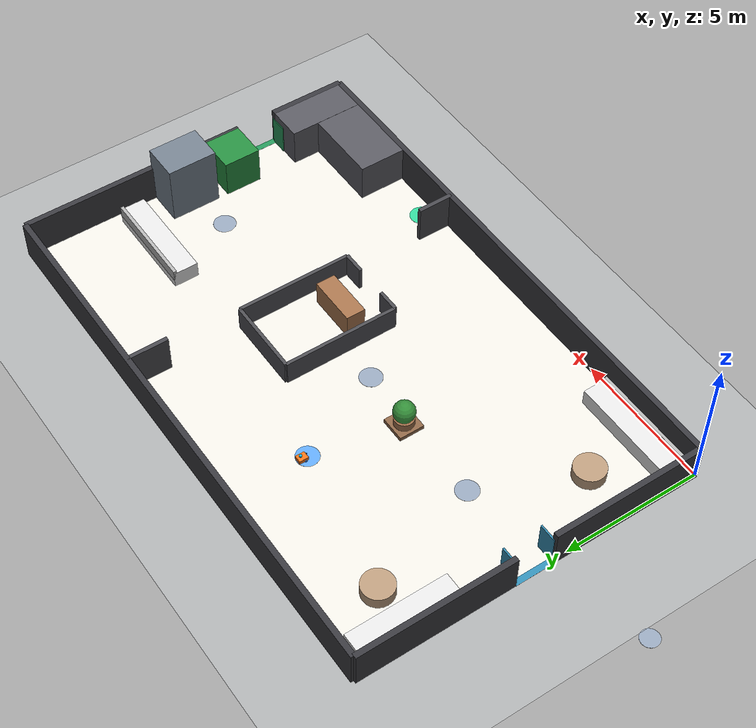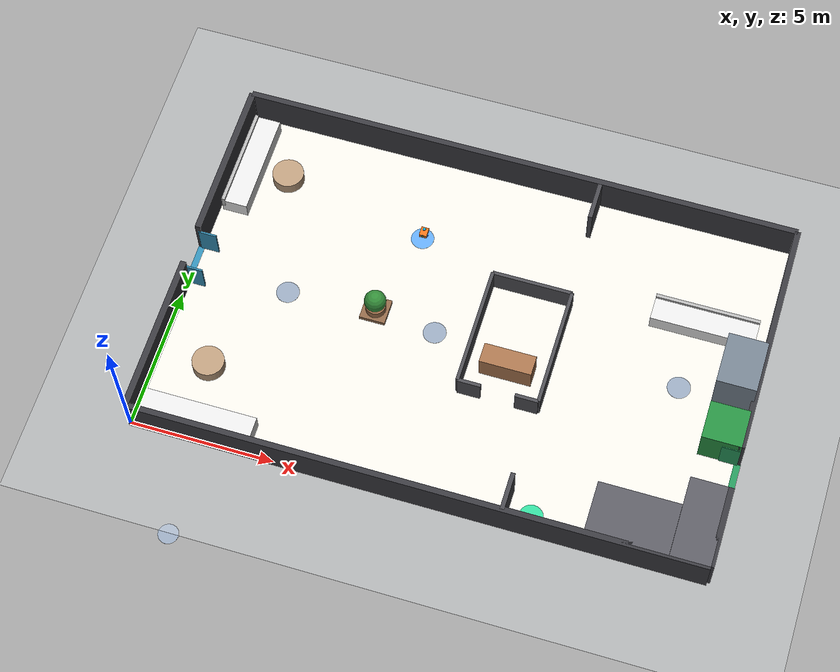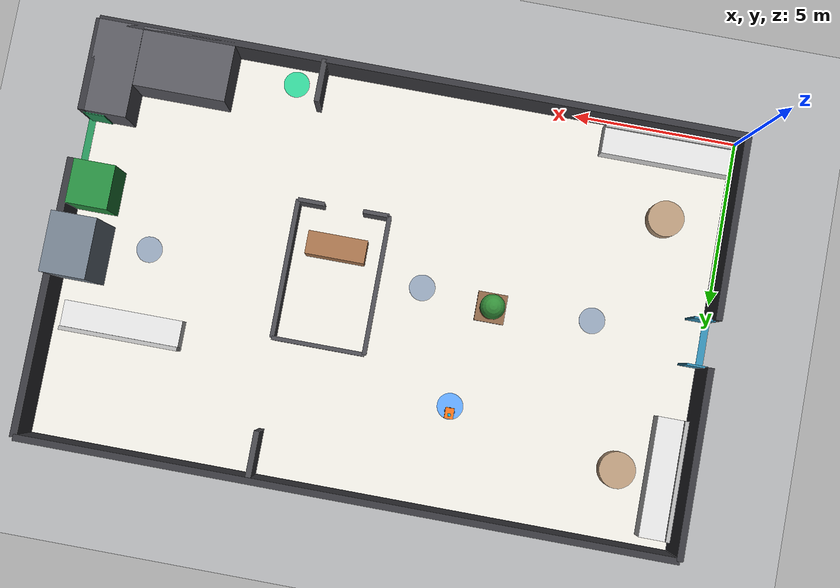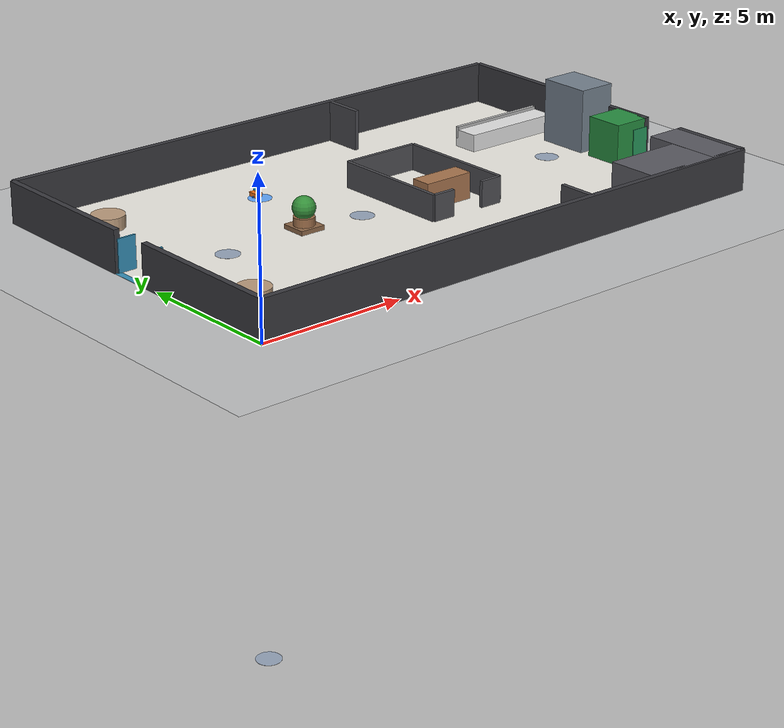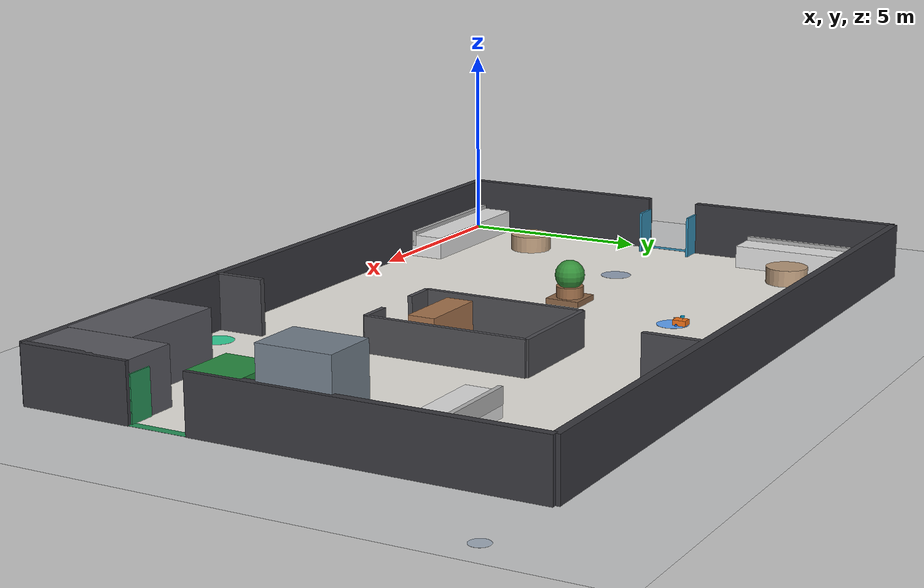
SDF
<?xml version="1.0" ?>
<sdf version="1.8">
  <world name="hotel_lobby_world">
    <!-- Scene Configuration: An toan bo luoi o vuong tren mat san -->
    <scene>
      <ambient>0.60 0.60 0.60 1.0</ambient>
      <background>0.88 0.90 0.92 1.0</background>
      <grid>false</grid>
      <origin_visual>false</origin_visual>
    </scene>

    <!-- Physics Configuration -->
    <physics name="1ms" type="ignored">
      <max_step_size>0.001</max_step_size>
      <real_time_factor>1.0</real_time_factor>
    </physics>

    <!-- Essential System Plugins -->
    <plugin filename="gz-sim-physics-system" name="gz::sim::systems::Physics"/>
    <plugin filename="gz-sim-user-commands-system" name="gz::sim::systems::UserCommands"/>
    <plugin filename="gz-sim-scene-broadcaster-system" name="gz::sim::systems::SceneBroadcaster"/>
    <plugin filename="gz-sim-sensors-system" name="gz::sim::systems::Sensors">
      <render_engine>ogre2</render_engine>
    </plugin>

    <!-- Native Gazebo GUI with docked 3D LiDAR Visualizer -->
    <gui fullscreen="0">
      <plugin filename="MinimalScene" name="3D View">
        <gz-gui>
          <title>3D View</title>
          <property type="bool" key="showTitleBar">false</property>
          <property type="string" key="state">docked</property>
          <property type="bool" key="show_grid">false</property>
        </gz-gui>
        <show_grid>false</show_grid>
        <engine>ogre2</engine>
        <scene>scene</scene>
        <ambient_light>0.60 0.60 0.60</ambient_light>
        <background_color>0.88 0.90 0.92</background_color>
        <!-- Isometric view from south entrance overlooking entire 19.60m x 12.60m grand lobby -->
        <camera_pose>9.80 -7.5 16.5 0 0.85 1.5708</camera_pose>
      </plugin>

      <plugin filename="EntityContextMenuPlugin" name="Entity context menu">
        <gz-gui>
          <property key="state" type="string">floating</property>
          <property key="width" type="double">5</property>
          <property key="height" type="double">5</property>
          <property key="showTitleBar" type="bool">false</property>
        </gz-gui>
      </plugin>

      <plugin filename="GzSceneManager" name="Scene Manager">
        <gz-gui>
          <property key="resizable" type="bool">false</property>
          <property key="width" type="double">5</property>
          <property key="height" type="double">5</property>
          <property key="state" type="string">floating</property>
          <property key="showTitleBar" type="bool">false</property>
        </gz-gui>
      </plugin>

      <plugin filename="InteractiveViewControl" name="Interactive view control">
        <gz-gui>
          <property key="resizable" type="bool">false</property>
          <property key="width" type="double">5</property>
          <property key="height" type="double">5</property>
          <property key="state" type="string">floating</property>
          <property key="showTitleBar" type="bool">false</property>
        </gz-gui>
      </plugin>

      <plugin filename="CameraTracking" name="Camera Tracking">
        <gz-gui>
          <property key="resizable" type="bool">false</property>
          <property key="width" type="double">5</property>
          <property key="height" type="double">5</property>
          <property key="state" type="string">floating</property>
          <property key="showTitleBar" type="bool">false</property>
        </gz-gui>
      </plugin>

      <plugin filename="WorldControl" name="World control">
        <gz-gui>
          <title>World control</title>
          <property type="bool" key="showTitleBar">false</property>
          <property type="bool" key="resizable">false</property>
          <property key="height" type="double">72</property>
          <property key="z" type="double">1</property>
          <property key="state" type="string">floating</property>
          <anchors target="3D View">
            <line own="left" target="left"/>
            <line own="bottom" target="bottom"/>
          </anchors>
        </gz-gui>
        <play_pause>true</play_pause>
        <step>true</step>
        <start_paused>false</start_paused>
        <use_event>true</use_event>
      </plugin>

      <plugin filename="WorldStats" name="World stats">
        <gz-gui>
          <title>World stats</title>
          <property type="bool" key="showTitleBar">false</property>
          <property type="bool" key="resizable">false</property>
          <property key="height" type="double">110</property>
          <property key="width" type="double">290</property>
          <property key="z" type="double">1</property>
          <property key="state" type="string">floating</property>
          <anchors target="3D View">
            <line own="right" target="right"/>
            <line own="bottom" target="bottom"/>
          </anchors>
        </gz-gui>
        <sim_time>true</sim_time>
        <real_time>true</real_time>
        <real_time_factor>true</real_time_factor>
        <iterations>true</iterations>
      </plugin>

      <!-- LiDAR 360 Rays Visualizer in Gazebo -->
      <plugin filename="VisualizeLidar" name="Visualize Lidar">
        <gz-gui>
          <property type="string" key="state">docked</property>
        </gz-gui>
      </plugin>

      <plugin filename="ComponentInspector" name="Component inspector">
        <gz-gui>
          <property type="string" key="state">docked</property>
        </gz-gui>
      </plugin>

      <plugin filename="EntityTree" name="Entity tree">
        <gz-gui>
          <property type="string" key="state">docked</property>
        </gz-gui>
      </plugin>

      <!-- Lai xe ao ngay trong Gazebo: publish gz.msgs.Twist len /cmd_vel (DiffDrive cua hc_robot) -->
      <plugin filename="Teleop" name="Teleop">
        <gz-gui>
          <title>Teleop</title>
          <property type="string" key="state">docked</property>
        </gz-gui>
        <topic>/cmd_vel</topic>
      </plugin>
    </gui>

    <!-- Lighting -->
    <light name="sun" type="directional">
      <cast_shadows>true</cast_shadows>
      <pose>9.80 6.30 25 0 0 0</pose>
      <diffuse>0.95 0.95 0.95 1</diffuse>
      <specular>0.3 0.3 0.3 1</specular>
      <direction>-0.3 0.2 -0.9</direction>
    </light>

    <!-- Ground Plane -->
    <model name="ground_plane">
      <static>true</static>
      <link name="link">
        <collision name="collision">
          <geometry>
            <plane>
              <normal>0 0 1</normal>
              <size>80 80</size>
            </plane>
          </geometry>
        </collision>
        <visual name="visual">
          <geometry>
            <plane>
              <normal>0 0 1</normal>
              <size>80 80</size>
            </plane>
          </geometry>
          <material>
            <ambient>0.82 0.84 0.86 1</ambient>
            <diffuse>0.82 0.84 0.86 1</diffuse>
          </material>
        </visual>
      </link>
    </model>

    <!-- HOTEL LOBBY ARCHITECTURE (19.60m x 12.60m - GROUND FLOOR)-->
    <!-- DONG BO 100% VOI SO DO MAT BANG 490x315 (TI LE 4.0x)     -->
    <model name="hotel_lobby_architecture">
      <static>true</static>

      <!-- 1. SAN SANH KHACH SAN (Tiled Lobby Floor: 19.60m x 12.60m) -->
      <link name="lobby_floor">
        <pose>9.80 6.30 0.005 0 0 0</pose>
        <visual name="vis">
          <geometry><box><size>19.60 12.60 0.01</size></box></geometry>
          <material>
            <ambient>0.92 0.91 0.88 1</ambient>
            <diffuse>0.92 0.91 0.88 1</diffuse>
            <specular>0.3 0.3 0.3 1</specular>
          </material>
        </visual>
      </link>

      <!-- 2. TUONG BAO NGOAI (OUTER WALLS: Cao 1.4m, Day 0.20m) -->
      <!-- Front entrance on the west wall: y = 5.55 to 6.95 m. -->
      <link name="wall_west_south">
        <pose>0.00 2.775 0.7 0 0 0</pose>
        <collision name="col"><geometry><box><size>0.20 5.55 1.4</size></box></geometry></collision>
        <visual name="vis">
          <geometry><box><size>0.20 5.55 1.4</size></box></geometry>
          <material><ambient>0.22 0.22 0.24 1</ambient><diffuse>0.22 0.22 0.24 1</diffuse></material>
        </visual>
      </link>
      <link name="wall_west_north">
        <pose>0.00 9.775 0.7 0 0 0</pose>
        <collision name="col"><geometry><box><size>0.20 5.65 1.4</size></box></geometry></collision>
        <visual name="vis">
          <geometry><box><size>0.20 5.65 1.4</size></box></geometry>
          <material><ambient>0.22 0.22 0.24 1</ambient><diffuse>0.22 0.22 0.24 1</diffuse></material>
        </visual>
      </link>
      <link name="front_door">
        <pose>0.00 6.25 0 0 0 0</pose>
        <collision name="south_leaf_collision">
          <pose>0.32 -0.70 0.55 0 0 0</pose>
          <geometry><box><size>0.64 0.06 1.10</size></box></geometry>
        </collision>
        <visual name="south_leaf">
          <pose>0.32 -0.70 0.55 0 0 0</pose>
          <geometry><box><size>0.64 0.06 1.10</size></box></geometry>
          <material><ambient>0.20 0.55 0.70 1</ambient><diffuse>0.20 0.55 0.70 1</diffuse></material>
        </visual>
        <collision name="north_leaf_collision">
          <pose>0.32 0.70 0.55 0 0 0</pose>
          <geometry><box><size>0.64 0.06 1.10</size></box></geometry>
        </collision>
        <visual name="north_leaf">
          <pose>0.32 0.70 0.55 0 0 0</pose>
          <geometry><box><size>0.64 0.06 1.10</size></box></geometry>
          <material><ambient>0.20 0.55 0.70 1</ambient><diffuse>0.20 0.55 0.70 1</diffuse></material>
        </visual>
        <visual name="threshold">
          <pose>0 0 0.014 0 0 0</pose>
          <geometry><box><size>0.22 1.40 0.004</size></box></geometry>
          <material><ambient>0.20 0.55 0.70 1</ambient><diffuse>0.20 0.55 0.70 1</diffuse></material>
        </visual>
      </link>

      <!-- Rear exit between the lift and WC: y = 2.80 to 4.26 m. -->
      <link name="wall_east_south">
        <pose>19.60 1.40 0.7 0 0 0</pose>
        <collision name="col"><geometry><box><size>0.20 2.80 1.4</size></box></geometry></collision>
        <visual name="vis">
          <geometry><box><size>0.20 2.80 1.4</size></box></geometry>
          <material><ambient>0.22 0.22 0.24 1</ambient><diffuse>0.22 0.22 0.24 1</diffuse></material>
        </visual>
      </link>
      <link name="wall_east_north">
        <pose>19.60 8.43 0.7 0 0 0</pose>
        <collision name="col"><geometry><box><size>0.20 8.34 1.4</size></box></geometry></collision>
        <visual name="vis">
          <geometry><box><size>0.20 8.34 1.4</size></box></geometry>
          <material><ambient>0.22 0.22 0.24 1</ambient><diffuse>0.22 0.22 0.24 1</diffuse></material>
        </visual>
      </link>
      <link name="rear_door">
        <pose>19.60 3.53 0 0 0 0</pose>
        <collision name="south_leaf_collision">
          <pose>-0.32 -0.73 0.55 0 0 0</pose>
          <geometry><box><size>0.64 0.06 1.10</size></box></geometry>
        </collision>
        <visual name="south_leaf">
          <pose>-0.32 -0.73 0.55 0 0 0</pose>
          <geometry><box><size>0.64 0.06 1.10</size></box></geometry>
          <material><ambient>0.15 0.58 0.35 1</ambient><diffuse>0.15 0.58 0.35 1</diffuse></material>
        </visual>
        <collision name="north_leaf_collision">
          <pose>-0.32 0.73 0.55 0 0 0</pose>
          <geometry><box><size>0.64 0.06 1.10</size></box></geometry>
        </collision>
        <visual name="north_leaf">
          <pose>-0.32 0.73 0.55 0 0 0</pose>
          <geometry><box><size>0.64 0.06 1.10</size></box></geometry>
          <material><ambient>0.15 0.58 0.35 1</ambient><diffuse>0.15 0.58 0.35 1</diffuse></material>
        </visual>
        <visual name="threshold">
          <pose>0 0 0.014 0 0 0</pose>
          <geometry><box><size>0.22 1.46 0.004</size></box></geometry>
          <material><ambient>0.15 0.58 0.35 1</ambient><diffuse>0.15 0.58 0.35 1</diffuse></material>
        </visual>
      </link>

      <!-- Tuong Bac (North Wall: y = 12.60) -->
      <link name="wall_north">
        <pose>9.80 12.60 0.7 0 0 0</pose>
        <collision name="col"><geometry><box><size>19.60 0.20 1.4</size></box></geometry></collision>
        <visual name="vis">
          <geometry><box><size>19.60 0.20 1.4</size></box></geometry>
          <material><ambient>0.22 0.22 0.24 1</ambient><diffuse>0.22 0.22 0.24 1</diffuse></material>
        </visual>
      </link>

      <!-- Tuong Nam (South Wall: y = 0.0) -->
      <link name="wall_south">
        <pose>9.80 0.0 0.7 0 0 0</pose>
        <collision name="col"><geometry><box><size>19.60 0.20 1.4</size></box></geometry></collision>
        <visual name="vis">
          <geometry><box><size>19.60 0.20 1.4</size></box></geometry>
          <material><ambient>0.22 0.22 0.24 1</ambient><diffuse>0.22 0.22 0.24 1</diffuse></material>
        </visual>
      </link>

      <!-- 3. VACH NGAN DOC (PARTITION WALLS: x = 12.68m) -->
      <!-- Vach Ngan Bac -->
      <link name="partition_top">
        <pose>12.68 11.87 0.7 0 0 0</pose>
        <collision name="col"><geometry><box><size>0.15 1.46 1.4</size></box></geometry></collision>
        <visual name="vis">
          <geometry><box><size>0.15 1.46 1.4</size></box></geometry>
          <material><ambient>0.28 0.28 0.30 1</ambient><diffuse>0.28 0.28 0.30 1</diffuse></material>
        </visual>
      </link>

      <!-- Vach Ngan Nam -->
      <link name="partition_bottom">
        <pose>12.78 0.65 0.7 0 0 0</pose>
        <collision name="col"><geometry><box><size>0.15 1.30 1.4</size></box></geometry></collision>
        <visual name="vis">
          <geometry><box><size>0.15 1.30 1.4</size></box></geometry>
          <material><ambient>0.28 0.28 0.30 1</ambient><diffuse>0.28 0.28 0.30 1</diffuse></material>
        </visual>
      </link>

      <!-- 4. KHU QUAY LE TAN TRUNG TAM (RECEPTION COUNTER: x=10.04..12.82, y=4.20..8.40) -->
      <link name="reception_wall_north">
        <pose>11.43 8.40 0.45 0 0 0</pose>
        <collision name="col"><geometry><box><size>2.78 0.12 0.90</size></box></geometry></collision>
        <visual name="vis">
          <geometry><box><size>2.78 0.12 0.90</size></box></geometry>
          <material><ambient>0.30 0.30 0.32 1</ambient><diffuse>0.30 0.30 0.32 1</diffuse></material>
        </visual>
      </link>
      <link name="reception_wall_west">
        <pose>10.04 6.30 0.45 0 0 0</pose>
        <collision name="col"><geometry><box><size>0.12 4.20 0.90</size></box></geometry></collision>
        <visual name="vis">
          <geometry><box><size>0.12 4.20 0.90</size></box></geometry>
          <material><ambient>0.30 0.30 0.32 1</ambient><diffuse>0.30 0.30 0.32 1</diffuse></material>
        </visual>
      </link>
      <link name="reception_wall_east">
        <pose>12.82 6.30 0.45 0 0 0</pose>
        <collision name="col"><geometry><box><size>0.12 4.20 0.90</size></box></geometry></collision>
        <visual name="vis">
          <geometry><box><size>0.12 4.20 0.90</size></box></geometry>
          <material><ambient>0.30 0.30 0.32 1</ambient><diffuse>0.30 0.30 0.32 1</diffuse></material>
        </visual>
      </link>
      <link name="reception_wall_south_l">
        <pose>10.44 4.20 0.45 0 0 0</pose>
        <collision name="col"><geometry><box><size>0.80 0.12 0.90</size></box></geometry></collision>
        <visual name="vis">
          <geometry><box><size>0.80 0.12 0.90</size></box></geometry>
          <material><ambient>0.30 0.30 0.32 1</ambient><diffuse>0.30 0.30 0.32 1</diffuse></material>
        </visual>
      </link>
      <link name="reception_wall_south_r">
        <pose>12.42 4.20 0.45 0 0 0</pose>
        <collision name="col"><geometry><box><size>0.80 0.12 0.90</size></box></geometry></collision>
        <visual name="vis">
          <geometry><box><size>0.80 0.12 0.90</size></box></geometry>
          <material><ambient>0.30 0.30 0.32 1</ambient><diffuse>0.30 0.30 0.32 1</diffuse></material>
        </visual>
      </link>
      <link name="reception_desk">
        <pose>11.43 5.40 0.45 0 0 0</pose>
        <collision name="col"><geometry><box><size>1.80 0.70 0.90</size></box></geometry></collision>
        <visual name="vis">
          <geometry><box><size>1.80 0.70 0.90</size></box></geometry>
          <material><ambient>0.65 0.45 0.30 1</ambient><diffuse>0.65 0.45 0.30 1</diffuse></material>
        </visual>
      </link>

      <!-- 5. GIAN TRAI - TAY BAC: 1 SOFA DOC DUNG SAT TUONG TAY + BAN TRA -->
      <!-- Sofa A: Doc (Dung) - Tay tren, sat tuong Tay -->
      <link name="sofa_tl_vertical">
        <pose>0.65 10.40 0.30 0 0 0</pose>
        <collision name="col"><geometry><box><size>0.90 3.60 0.60</size></box></geometry></collision>
        <visual name="vis">
          <geometry><box><size>0.90 3.60 0.60</size></box></geometry>
          <material><ambient>0.88 0.88 0.88 1</ambient><diffuse>0.88 0.88 0.88 1</diffuse></material>
        </visual>
      </link>
      <!-- Sofa A dem tua lung (cushion back) -->
      <link name="sofa_tl_vertical_back">
        <pose>0.25 10.40 0.50 0 0 0</pose>
        <visual name="vis">
          <geometry><box><size>0.12 3.60 0.40</size></box></geometry>
          <material><ambient>0.70 0.70 0.70 1</ambient><diffuse>0.70 0.70 0.70 1</diffuse></material>
        </visual>
      </link>

      <!-- Ban tra tron khu Tay Bac -->
      <link name="table_top_left">
        <pose>2.00 10.40 0.22 0 0 0</pose>
        <collision name="col"><geometry><cylinder><radius>0.55</radius><length>0.44</length></cylinder></geometry></collision>
        <visual name="vis">
          <geometry><cylinder><radius>0.55</radius><length>0.44</length></cylinder></geometry>
          <material><ambient>0.72 0.60 0.48 1</ambient><diffuse>0.72 0.60 0.48 1</diffuse></material>
        </visual>
      </link>

      <!-- 6. GIAN TRAI - TAY NAM: SOFA NGANG DAI SAT TUONG NAM + BAN TRA -->
      <!-- Sofa ngang dai sat tuong Nam -->
      <link name="sofa_bot_left">
        <pose>2.10 0.65 0.30 0 0 0</pose>
        <collision name="col"><geometry><box><size>4.00 0.90 0.60</size></box></geometry></collision>
        <visual name="vis">
          <geometry><box><size>4.00 0.90 0.60</size></box></geometry>
          <material><ambient>0.88 0.88 0.88 1</ambient><diffuse>0.88 0.88 0.88 1</diffuse></material>
        </visual>
      </link>
      <link name="sofa_bot_left_back">
        <pose>2.10 0.25 0.50 0 0 0</pose>
        <visual name="vis">
          <geometry><box><size>4.00 0.12 0.40</size></box></geometry>
          <material><ambient>0.70 0.70 0.70 1</ambient><diffuse>0.70 0.70 0.70 1</diffuse></material>
        </visual>
      </link>

      <!-- Ban tra tron khu Tay Nam -->
      <link name="table_bot_left">
        <pose>1.80 2.70 0.22 0 0 0</pose>
        <collision name="col"><geometry><cylinder><radius>0.55</radius><length>0.44</length></cylinder></geometry></collision>
        <visual name="vis">
          <geometry><cylinder><radius>0.55</radius><length>0.44</length></cylinder></geometry>
          <material><ambient>0.72 0.60 0.48 1</ambient><diffuse>0.72 0.60 0.48 1</diffuse></material>
        </visual>
      </link>

      <!-- 7. CHAU CAY CANH (POTTED PLANT) TRUNG TAM GIAN TRAI -->
      <!-- De chau (day) -->
      <link name="plant_base">
        <pose>6.52 6.30 0.08 0 0 0</pose>
        <collision name="col"><geometry><box><size>0.90 0.90 0.16</size></box></geometry></collision>
        <visual name="vis">
          <geometry><box><size>0.90 0.90 0.16</size></box></geometry>
          <material><ambient>0.55 0.40 0.28 1</ambient><diffuse>0.55 0.40 0.28 1</diffuse></material>
        </visual>
      </link>
      <!-- Than chau (gom) -->
      <link name="plant_pot">
        <pose>6.52 6.30 0.30 0 0 0</pose>
        <collision name="col"><geometry><cylinder><radius>0.35</radius><length>0.28</length></cylinder></geometry></collision>
        <visual name="vis">
          <geometry><cylinder><radius>0.35</radius><length>0.28</length></cylinder></geometry>
          <material><ambient>0.60 0.42 0.28 1</ambient><diffuse>0.60 0.42 0.28 1</diffuse></material>
        </visual>
      </link>
      <!-- Tan la cay (sphere xanh la) -->
      <link name="plant_foliage">
        <pose>6.52 6.30 0.72 0 0 0</pose>
        <visual name="vis">
          <geometry><sphere><radius>0.38</radius></sphere></geometry>
          <material><ambient>0.20 0.55 0.22 1</ambient><diffuse>0.20 0.55 0.22 1</diffuse></material>
        </visual>
      </link>

      <!-- 8. GIAN PHAI: 1 SOFA NGANG (QUAY VE HUONG NAM) -->
      <link name="sofa_right_horizontal">
        <pose>17.35 8.85 0.30 0 0 0</pose>
        <collision name="col"><geometry><box><size>3.60 0.90 0.60</size></box></geometry></collision>
        <visual name="vis">
          <geometry><box><size>3.60 0.90 0.60</size></box></geometry>
          <material><ambient>0.88 0.88 0.88 1</ambient><diffuse>0.88 0.88 0.88 1</diffuse></material>
        </visual>
      </link>
      <link name="sofa_right_horizontal_back">
        <pose>17.35 9.25 0.50 0 0 0</pose>
        <visual name="vis">
          <geometry><box><size>3.60 0.12 0.40</size></box></geometry>
          <material><ambient>0.70 0.70 0.70 1</ambient><diffuse>0.70 0.70 0.70 1</diffuse></material>
        </visual>
      </link>

      <!-- 9. CUM THANG MAY (ELEVATOR) -->
      <link name="elevator_cabin">
        <pose>18.92 6.86 1.10 0 0 0</pose>
        <collision name="col"><geometry><box><size>1.35 1.80 2.20</size></box></geometry></collision>
        <visual name="vis">
          <geometry><box><size>1.35 1.80 2.20</size></box></geometry>
          <material><ambient>0.45 0.50 0.55 1</ambient><diffuse>0.45 0.50 0.55 1</diffuse><specular>0.7 0.7 0.7 1</specular></material>
        </visual>
      </link>

      <!-- 10. CUA THOAT HIEM KHAN CAP (EMERGENCY EXIT) -->
      <link name="emergency_exit_block">
        <pose>18.92 4.93 0.70 0 0 0</pose>
        <collision name="col"><geometry><box><size>1.35 1.34 1.40</size></box></geometry></collision>
        <visual name="vis">
          <geometry><box><size>1.35 1.34 1.40</size></box></geometry>
          <material><ambient>0.15 0.55 0.25 1</ambient><diffuse>0.15 0.55 0.25 1</diffuse></material>
        </visual>
      </link>

      <!-- 11. CUM NHA VE SINH (RESTROOMS WC 1 & WC 2 - GOC DONG NAM) -->
      <link name="wc_east">
        <pose>18.92 1.40 0.70 0 0 0</pose>
        <collision name="col"><geometry><box><size>1.35 2.80 1.40</size></box></geometry></collision>
        <visual name="vis">
          <geometry><box><size>1.35 2.80 1.40</size></box></geometry>
          <material><ambient>0.35 0.35 0.38 1</ambient><diffuse>0.35 0.35 0.38 1</diffuse></material>
        </visual>
      </link>
      <link name="wc_south">
        <pose>16.85 0.90 0.70 0 0 0</pose>
        <collision name="col"><geometry><box><size>2.78 1.80 1.40</size></box></geometry></collision>
        <visual name="vis">
          <geometry><box><size>2.78 1.80 1.40</size></box></geometry>
          <material><ambient>0.35 0.35 0.38 1</ambient><diffuse>0.35 0.35 0.38 1</diffuse></material>
        </visual>
      </link>
      <!-- 12. CAC VUNG KIEM SOAT CHUC NANG (ZONES VISUAL OVERLAYS)  -->
      <!-- Hien thi truc quan tren san Gazebo dong bo voi Web Admin  -->
      <!-- Vung Cam Dung (NO_STOP Doorway: x=12.84, y=9.80, w=2.4, h=2.8) -->
      <link name="vis_zone_nostop_doorway">
        <pose>12.84 9.80 0.007 0 0 0</pose>
        <visual name="vis">
          <geometry><box><size>2.40 2.80 0.004</size></box></geometry>
          <material>
            <ambient>0.95 0.15 0.25 0.40</ambient>
            <diffuse>0.95 0.15 0.25 0.40</diffuse>
            <emissive>0.3 0.05 0.08 0.40</emissive>
          </material>
        </visual>
      </link>

      <!-- Vung Giam Toc Quay Le Tan (SPEED_ZONE: x=11.44, y=2.80, w=4.8, h=2.4) -->
      <link name="vis_zone_speed_frontdesk">
        <pose>11.44 2.80 0.007 0 0 0</pose>
        <visual name="vis">
          <geometry><box><size>4.80 2.40 0.004</size></box></geometry>
          <material>
            <ambient>0.95 0.60 0.05 0.35</ambient>
            <diffuse>0.95 0.60 0.05 0.35</diffuse>
            <emissive>0.25 0.15 0.02 0.35</emissive>
          </material>
        </visual>
      </link>

      <!-- Vung Cam Vao Phong Noi Bo (KEEP_OUT: x=11.44, y=6.40, w=2.8, h=3.6) -->
      <link name="vis_zone_keepout_staff">
        <pose>11.44 6.40 0.007 0 0 0</pose>
        <visual name="vis">
          <geometry><box><size>2.80 3.60 0.004</size></box></geometry>
          <material>
            <ambient>0.85 0.10 0.10 0.45</ambient>
            <diffuse>0.85 0.10 0.10 0.45</diffuse>
            <emissive>0.35 0.02 0.02 0.45</emissive>
          </material>
        </visual>
      </link>

      <!-- Vung Sanh Thang May (SLOW_ZONE: x=17.20, y=6.96, w=3.6, h=3.6) -->
      <link name="vis_zone_slow_elevator">
        <pose>17.20 6.96 0.007 0 0 0</pose>
        <visual name="vis">
          <geometry><box><size>3.60 3.60 0.004</size></box></geometry>
          <material>
            <ambient>0.20 0.55 0.90 0.30</ambient>
            <diffuse>0.20 0.55 0.90 0.30</diffuse>
            <emissive>0.05 0.15 0.30 0.30</emissive>
          </material>
        </visual>
      </link>

      <!-- Vung Yen Tinh Khu Sofa (QUIET_ZONE: x=4.20, y=7.20, w=5.6, h=7.2) -->
      <link name="vis_zone_quiet_lounge">
        <pose>4.20 7.20 0.007 0 0 0</pose>
        <visual name="vis">
          <geometry><box><size>5.60 7.20 0.004</size></box></geometry>
          <material>
            <ambient>0.55 0.30 0.85 0.25</ambient>
            <diffuse>0.55 0.30 0.85 0.25</diffuse>
            <emissive>0.15 0.08 0.25 0.25</emissive>
          </material>
        </visual>
      </link>
    </model>

    <!-- 13. CAC DIEM DICH DEN / ENDPOINTS (WAYPOINT 3D BEACONS)   -->
    <!-- Toan bo diem cung loai thi cung mau:                      -->
    <!-- - PARK (Standby): Amber Vang Cam (0.96, 0.62, 0.04)       -->
    <!-- - CHARGER (Tram Sac): Emerald Xanh La (0.06, 0.72, 0.50)  -->
    <!-- - WAYPOINT (Diem Moc): Royal Blue Xanh Duong (0.15, 0.45, 0.95) -->
    <!-- Cac diem duoc to chuc thanh MODEL rieng de cho phep       -->
    <!-- set_pose thoi gian thuc tu Web Admin                      -->

    <!-- Waypoint 1: Vi Tri Cho Robot Sanh (ROBOT_STANDBY - PARK: Amber) -->
    <model name="wp_marker_standby">
      <static>true</static>
      <pose>17.09 6.43 0.01 0 0 0</pose>
      <link name="link">
        <visual name="floor_ring">
          <geometry><cylinder><radius>0.40</radius><length>0.005</length></cylinder></geometry>
          <material>
            <ambient>0.58 0.64 0.72 0.9</ambient>
            <diffuse>0.58 0.64 0.72 0.9</diffuse>
            <emissive>0.45 0.5 0.58 1.0</emissive>
          </material>
        </visual>
      </link>
    </model>

    <!-- Waypoint 2: Tram Sac Robot Sanh (CHARGER - CHARGER: Emerald Green) -->
    <model name="wp_marker_charger">
      <static>true</static>
      <pose>3.42 6.12 0.01 0 0 0</pose>
      <link name="link">
        <visual name="floor_ring">
          <geometry><cylinder><radius>0.40</radius><length>0.005</length></cylinder></geometry>
          <material>
            <ambient>0.58 0.64 0.72 0.9</ambient>
            <diffuse>0.58 0.64 0.72 0.9</diffuse>
            <emissive>0.45 0.5 0.58 1.0</emissive>
          </material>
        </visual>
      </link>
    </model>

    <!-- Waypoint 3: Truoc Quay Le Tan (FRONT_DESK - WAYPOINT: Royal Blue) -->
    <model name="wp_marker_frontdesk">
      <static>true</static>
      <pose>13.62 0.58 0.01 0 0 0</pose>
      <link name="link">
        <visual name="floor_ring">
          <geometry><cylinder><radius>0.40</radius><length>0.005</length></cylinder></geometry>
          <material>
            <ambient>0.2 0.83 0.6 0.9</ambient>
            <diffuse>0.2 0.83 0.6 0.9</diffuse>
            <emissive>0.15 0.65 0.45 1.0</emissive>
          </material>
        </visual>
      </link>
    </model>

    <!-- Waypoint 4: Cua Chinh Ra Vao Sanh (MAIN_ENTRANCE - WAYPOINT: Royal Blue) -->
    <model name="wp_marker_entrance">
      <static>true</static>
      <pose>8.68 6.07 0.01 0 0 0</pose>
      <link name="link">
        <visual name="floor_ring">
          <geometry><cylinder><radius>0.40</radius><length>0.005</length></cylinder></geometry>
          <material>
            <ambient>0.58 0.64 0.72 0.9</ambient>
            <diffuse>0.58 0.64 0.72 0.9</diffuse>
            <emissive>0.45 0.5 0.58 1.0</emissive>
          </material>
        </visual>
      </link>
    </model>

    <!-- Waypoint 5: Truoc Phong Noi Bo (STAFF_ONLY - WAYPOINT: Royal Blue) -->
    <model name="wp_marker_staff">
      <static>true</static>
      <pose>7.21 9.45 0.01 0 0 0</pose>
      <link name="link">
        <visual name="floor_ring">
          <geometry><cylinder><radius>0.40</radius><length>0.005</length></cylinder></geometry>
          <material>
            <ambient>0.38 0.65 0.98 0.9</ambient>
            <diffuse>0.38 0.65 0.98 0.9</diffuse>
            <emissive>0.25 0.5 0.8 1.0</emissive>
          </material>
        </visual>
      </link>
    </model>

    <!-- Waypoint 6: Cum Thang May Tang 1 (ELEVATOR - WAYPOINT: Royal Blue) -->
    <model name="wp_marker_elevator">
      <static>true</static>
      <pose>0.00 0.00 -10.00 0 0 0</pose>
      <link name="link">
        <visual name="floor_ring">
          <geometry><cylinder><radius>0.40</radius><length>0.005</length></cylinder></geometry>
          <material>
            <ambient>0.58 0.64 0.72 0.9</ambient>
            <diffuse>0.58 0.64 0.72 0.9</diffuse>
            <emissive>0.45 0.5 0.58 1.0</emissive>
          </material>
        </visual>
      </link>
    </model>

    <!-- Waypoint 7: Nha Ve Sinh Sanh WC (RESTROOMS - WAYPOINT: Royal Blue) -->
    <model name="wp_marker_restrooms">
      <static>true</static>
      <pose>0.00 0.00 -10.00 0 0 0</pose>
      <link name="link">
        <visual name="floor_ring">
          <geometry><cylinder><radius>0.40</radius><length>0.005</length></cylinder></geometry>
          <material>
            <ambient>0.58 0.64 0.72 0.9</ambient>
            <diffuse>0.58 0.64 0.72 0.9</diffuse>
            <emissive>0.45 0.5 0.58 1.0</emissive>
          </material>
        </visual>
      </link>
    </model>

    <!-- Waypoint 8: Loi Thoat Hiem Khan Cap (STAIRS / EMERGENCY - WAYPOINT: Royal Blue) -->
    <model name="wp_marker_emergency">
      <static>true</static>
      <pose>0.00 0.00 -10.00 0 0 0</pose>
      <link name="link">
        <visual name="floor_ring">
          <geometry><cylinder><radius>0.40</radius><length>0.005</length></cylinder></geometry>
          <material>
            <ambient>0.58 0.64 0.72 0.9</ambient>
            <diffuse>0.58 0.64 0.72 0.9</diffuse>
            <emissive>0.45 0.5 0.58 1.0</emissive>
          </material>
        </visual>
      </link>
    </model>

    <!-- Waypoint 9: Khu Sofa Sanh (LOBBY_LOUNGE - WAYPOINT: Royal Blue) -->
    <model name="wp_marker_lounge">
      <static>true</static>
      <pose>0.00 0.00 -10.00 0 0 0</pose>
      <link name="link">
        <visual name="floor_ring">
          <geometry><cylinder><radius>0.40</radius><length>0.005</length></cylinder></geometry>
          <material>
            <ambient>0.58 0.64 0.72 0.9</ambient>
            <diffuse>0.58 0.64 0.72 0.9</diffuse>
            <emissive>0.45 0.5 0.58 1.0</emissive>
          </material>
        </visual>
      </link>
    </model>

    <!-- ROBOT HC-ROBOT MODEL (COMPACT SIZE)                      -->
    <!-- Dat tai Khu Vuc Thong Thoang Phia Bac: X=7.20, Y=9.60    -->
    <include>
      <uri>model://hc_robot</uri>
      <name>hc_robot</name>
      <pose>7.20 9.60 0.03 0 0 -1.5708</pose>
    </include>

  </world>
</sdf>

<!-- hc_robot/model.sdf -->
<sdf version="1.8">
  <model name="hc_robot">
    <pose>0 0 0.033 0 0 0</pose>

    <!-- BASE LINK / CHASSIS -->
    <link name="base_link">
      <inertial>
        <pose>-0.0585 0 0.059 0 0 0</pose>
        <mass>1.2</mass>
        <inertia>
          <ixx>0.01</ixx>
          <ixy>0</ixy>
          <ixz>0</ixz>
          <iyy>0.015</iyy>
          <iyz>0</iyz>
          <izz>0.02</izz>
        </inertia>
      </inertial>

      <!-- Chassis Visual (Orange Body) -->
      <visual name="chassis_visual">
        <pose>-0.0585 0 0.059 0 0 0</pose>
        <geometry>
          <box>
            <size>0.335 0.265 0.138</size>
          </box>
        </geometry>
        <material>
          <ambient>0.95 0.45 0.1 1</ambient>
          <diffuse>0.95 0.45 0.1 1</diffuse>
          <specular>0.5 0.5 0.5 1</specular>
        </material>
      </visual>

      <collision name="chassis_collision">
        <pose>-0.0585 0 0.059 0 0 0</pose>
        <geometry>
          <box>
            <size>0.335 0.265 0.138</size>
          </box>
        </geometry>
      </collision>

      <!-- Caster Wheel (White Low-Friction Ball) -->
      <visual name="caster_visual">
        <pose>-0.151 0 -0.023 0 0 0</pose>
        <geometry>
          <sphere>
            <radius>0.01</radius>
          </sphere>
        </geometry>
        <material>
          <ambient>0.9 0.9 0.9 1</ambient>
          <diffuse>0.9 0.9 0.9 1</diffuse>
        </material>
      </visual>

      <collision name="caster_collision">
        <pose>-0.151 0 -0.023 0 0 0</pose>
        <geometry>
          <sphere>
            <radius>0.01</radius>
          </sphere>
        </geometry>
        <surface>
          <friction>
            <ode>
              <mu>0.001</mu>
              <mu2>0.001</mu2>
            </ode>
          </friction>
        </surface>
      </collision>

      <!-- LiDAR Sensor Stand & Puck -->
      <visual name="lidar_stand">
        <pose>-0.104 0 0.15 0 0 0</pose>
        <geometry>
          <cylinder>
            <radius>0.01</radius>
            <length>0.1</length>
          </cylinder>
        </geometry>
        <material>
          <ambient>0.1 0.1 0.1 1</ambient>
          <diffuse>0.1 0.1 0.1 1</diffuse>
        </material>
      </visual>

      <visual name="lidar_puck">
        <pose>-0.104 0 0.20 0 0 0</pose>
        <geometry>
          <cylinder>
            <radius>0.05</radius>
            <length>0.04</length>
          </cylinder>
        </geometry>
        <material>
          <ambient>0.05 0.7 0.9 1</ambient>
          <diffuse>0.05 0.7 0.9 1</diffuse>
        </material>
      </visual>

      <collision name="lidar_collision">
        <pose>-0.104 0 0.20 0 0 0</pose>
        <geometry>
          <cylinder>
            <radius>0.05</radius>
            <length>0.04</length>
          </cylinder>
        </geometry>
      </collision>

      <!-- Camera Mount -->
      <visual name="camera_visual">
        <pose>0.11 0 0.14 0 0.18 0</pose>
        <geometry>
          <box>
            <size>0.02 0.04 0.04</size>
          </box>
        </geometry>
        <material>
          <ambient>0.1 0.1 0.1 1</ambient>
          <diffuse>0.1 0.1 0.1 1</diffuse>
        </material>
      </visual>

      <!-- Robot Eyes (Display Face) -->
      <visual name="face_eye_left">
        <pose>0.11 0.05 0.09 0 1.5708 0</pose>
        <geometry>
          <cylinder>
            <radius>0.015</radius>
            <length>0.005</length>
          </cylinder>
        </geometry>
        <material>
          <ambient>0.1 0.8 1.0 1</ambient>
          <diffuse>0.1 0.8 1.0 1</diffuse>
          <emissive>0.1 0.8 1.0 1</emissive>
        </material>
      </visual>

      <visual name="face_eye_right">
        <pose>0.11 -0.05 0.09 0 1.5708 0</pose>
        <geometry>
          <cylinder>
            <radius>0.015</radius>
            <length>0.005</length>
          </cylinder>
        </geometry>
        <material>
          <ambient>0.1 0.8 1.0 1</ambient>
          <diffuse>0.1 0.8 1.0 1</diffuse>
          <emissive>0.1 0.8 1.0 1</emissive>
        </material>
      </visual>

      <!-- Robot Mouth / LED Screen Indicator -->
      <visual name="face_mouth">
        <pose>0.11 0 0.05 0 1.5708 0</pose>
        <geometry>
          <box>
            <size>0.01 0.06 0.005</size>
          </box>
        </geometry>
        <material>
          <ambient>0.1 1.0 0.3 1</ambient>
          <diffuse>0.1 1.0 0.3 1</diffuse>
          <emissive>0.1 1.0 0.3 1</emissive>
        </material>
      </visual>

      <!-- LiDAR Sensor Plugin (Visual 360 Rays Enabled, 8m Range Capped to Room) -->
      <sensor name="laser" type="gpu_lidar">
        <pose>-0.104 0 0.20 0 0 0</pose>
        <visualize>true</visualize>
        <update_rate>15</update_rate>
        <topic>/scan</topic>
        <gz_frame_id>laser_frame</gz_frame_id>
        <lidar>
          <scan>
            <horizontal>
              <samples>360</samples>
              <resolution>1</resolution>
              <min_angle>-3.14159</min_angle>
              <max_angle>3.14159</max_angle>
            </horizontal>
            <vertical>
              <samples>1</samples>
              <resolution>1</resolution>
              <min_angle>0.0</min_angle>
              <max_angle>0.0</max_angle>
            </vertical>
          </scan>
          <range>
            <min>0.12</min>
            <max>8.0</max>
            <resolution>0.01</resolution>
          </range>
        </lidar>
      </sensor>

      <!-- Camera Sensor Plugin (Matched to camera.xacro pose and optical frame) -->
      <sensor name="camera" type="camera">
        <pose>0.11 0 0.14 0 0.18 0</pose>
        <visualize>false</visualize>
        <update_rate>15</update_rate>
        <topic>/camera/image_raw</topic>
        <gz_frame_id>camera_link_optical</gz_frame_id>
        <camera>
          <camera_info_topic>/camera/camera_info</camera_info_topic>
          <horizontal_fov>1.1</horizontal_fov>
          <image>
            <format>R8G8B8</format>
            <width>640</width>
            <height>480</height>
          </image>
          <clip>
            <near>0.05</near>
            <far>10.0</far>
          </clip>
        </camera>
      </sensor>
    </link>

    <!-- LEFT WHEEL -->
    <link name="left_wheel">
      <pose>0 0.1485 0 -1.5708 0 0</pose>
      <inertial>
        <mass>0.08</mass>
        <inertia>
          <ixx>0.0001</ixx>
          <ixy>0</ixy>
          <ixz>0</ixz>
          <iyy>0.0001</iyy>
          <iyz>0</iyz>
          <izz>0.0001</izz>
        </inertia>
      </inertial>
      <visual name="visual">
        <geometry>
          <cylinder>
            <radius>0.033</radius>
            <length>0.026</length>
          </cylinder>
        </geometry>
        <material>
          <ambient>0.15 0.45 0.9 1</ambient>
          <diffuse>0.15 0.45 0.9 1</diffuse>
        </material>
      </visual>
      <collision name="collision">
        <geometry>
          <sphere>
            <radius>0.033</radius>
          </sphere>
        </geometry>
        <surface>
          <friction>
            <ode>
              <mu>1.0</mu>
              <mu2>1.0</mu2>
            </ode>
          </friction>
        </surface>
      </collision>
    </link>

    <!-- RIGHT WHEEL -->
    <link name="right_wheel">
      <pose>0 -0.1485 0 1.5708 0 0</pose>
      <inertial>
        <mass>0.08</mass>
        <inertia>
          <ixx>0.0001</ixx>
          <ixy>0</ixy>
          <ixz>0</ixz>
          <iyy>0.0001</iyy>
          <iyz>0</iyz>
          <izz>0.0001</izz>
        </inertia>
      </inertial>
      <visual name="visual">
        <geometry>
          <cylinder>
            <radius>0.033</radius>
            <length>0.026</length>
          </cylinder>
        </geometry>
        <material>
          <ambient>0.15 0.45 0.9 1</ambient>
          <diffuse>0.15 0.45 0.9 1</diffuse>
        </material>
      </visual>
      <collision name="collision">
        <geometry>
          <sphere>
            <radius>0.033</radius>
          </sphere>
        </geometry>
        <surface>
          <friction>
            <ode>
              <mu>1.0</mu>
              <mu2>1.0</mu2>
            </ode>
          </friction>
        </surface>
      </collision>
    </link>

    <!-- REVOLUTE JOINTS FOR WHEELS (Axle rotation around horizontal Y-axis of base_link) -->
    <joint name="left_wheel_joint" type="revolute">
      <parent>base_link</parent>
      <child>left_wheel</child>
      <axis>
        <xyz expressed_in="base_link">0 1 0</xyz>
        <limit>
          <lower>-1e16</lower>
          <upper>1e16</upper>
        </limit>
      </axis>
    </joint>

    <joint name="right_wheel_joint" type="revolute">
      <parent>base_link</parent>
      <child>right_wheel</child>
      <axis>
        <xyz expressed_in="base_link">0 1 0</xyz>
        <limit>
          <lower>-1e16</lower>
          <upper>1e16</upper>
        </limit>
      </axis>
    </joint>

    <!-- DIFF DRIVE SYSTEM PLUGIN (GAZEBO HARMONIC) -->
    <plugin filename="gz-sim-diff-drive-system" name="gz::sim::systems::DiffDrive">
      <left_joint>left_wheel_joint</left_joint>
      <right_joint>right_wheel_joint</right_joint>
      <wheel_separation>0.297</wheel_separation>
      <wheel_radius>0.033</wheel_radius>
      <topic>cmd_vel</topic>
      <odom_topic>odom</odom_topic>
      <tf_topic>tf</tf_topic>
      <frame_id>odom</frame_id>
      <child_frame_id>base_link</child_frame_id>
    </plugin>
  </model>
</sdf>
